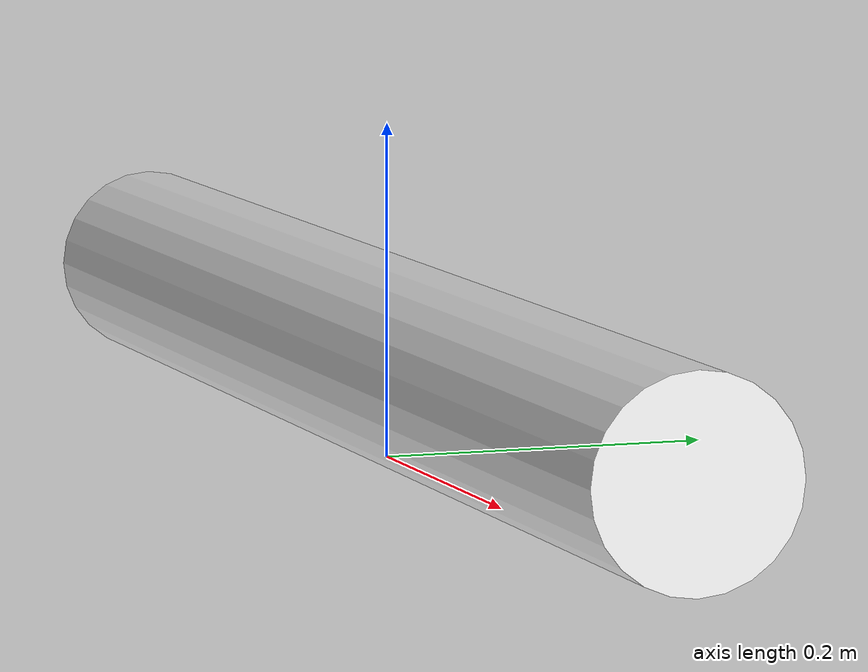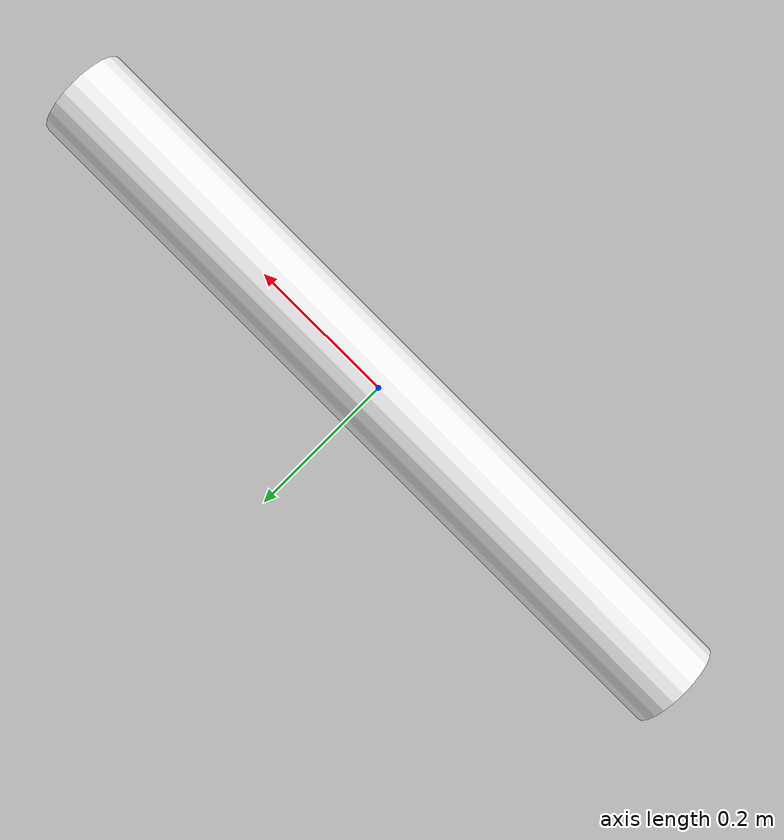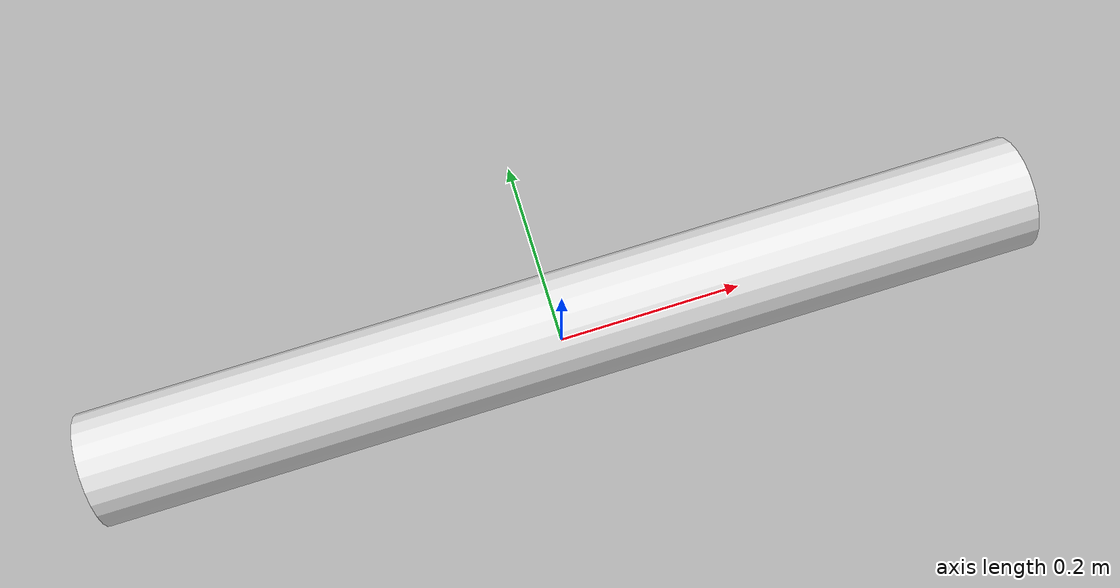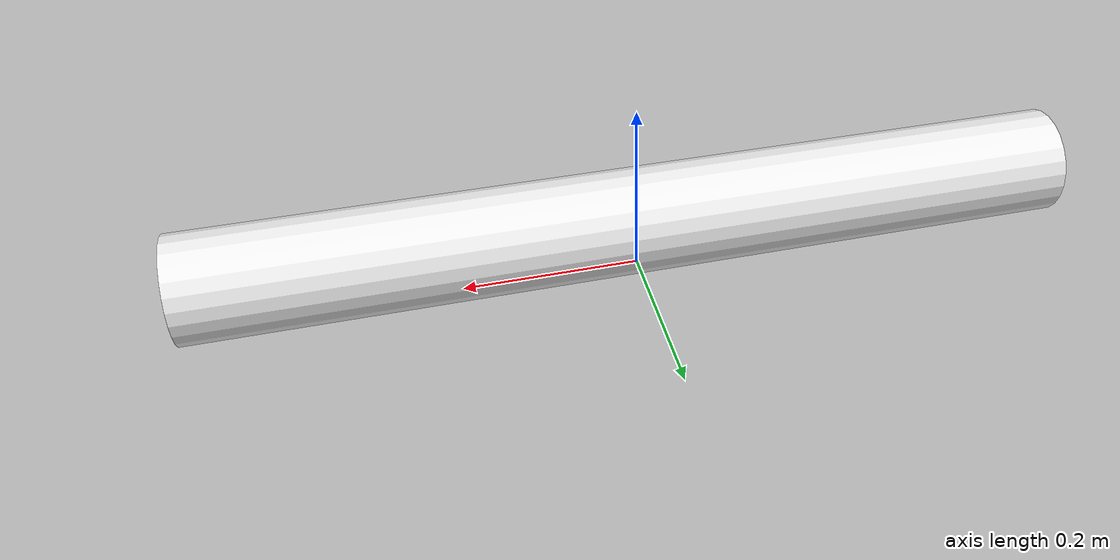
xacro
<?xml version="1.0"?>
<robot xmlns:xacro="http://www.ros.org/wiki/xacro">

    <xacro:property name="base_length" value="1.0" />
    <xacro:property name="base_radius" value="0.06" />

    <link name="base_footprint" />

    <joint name="base_joint" type="fixed">
        <parent link="base_footprint" />
        <child link="base_link" />
        <origin xyz="0 0 ${base_radius}" rpy="0 0 0" />
    </joint>

    <link name="base_link">
        <visual>
            <origin xyz="0 0 0" rpy="0 ${pi/2} 0" />
            <geometry>
                <cylinder radius="${base_radius}" length="${base_length}" />
            </geometry>
            <material name="white" />
        </visual>
        <collision>
            <geometry>
                <box size="${2*base_radius} ${2*base_radius} ${base_length}" />
            </geometry>
            <origin xyz="0 0 0" rpy="0 ${pi/2} 0" />
        </collision>
        <xacro:cylinder_inertia m="12.0" r="${base_radius}" l="${base_length}"
            o_xyz="0 0 0" o_rpy="0 ${pi/2} 0" />
    </link>

</robot>
